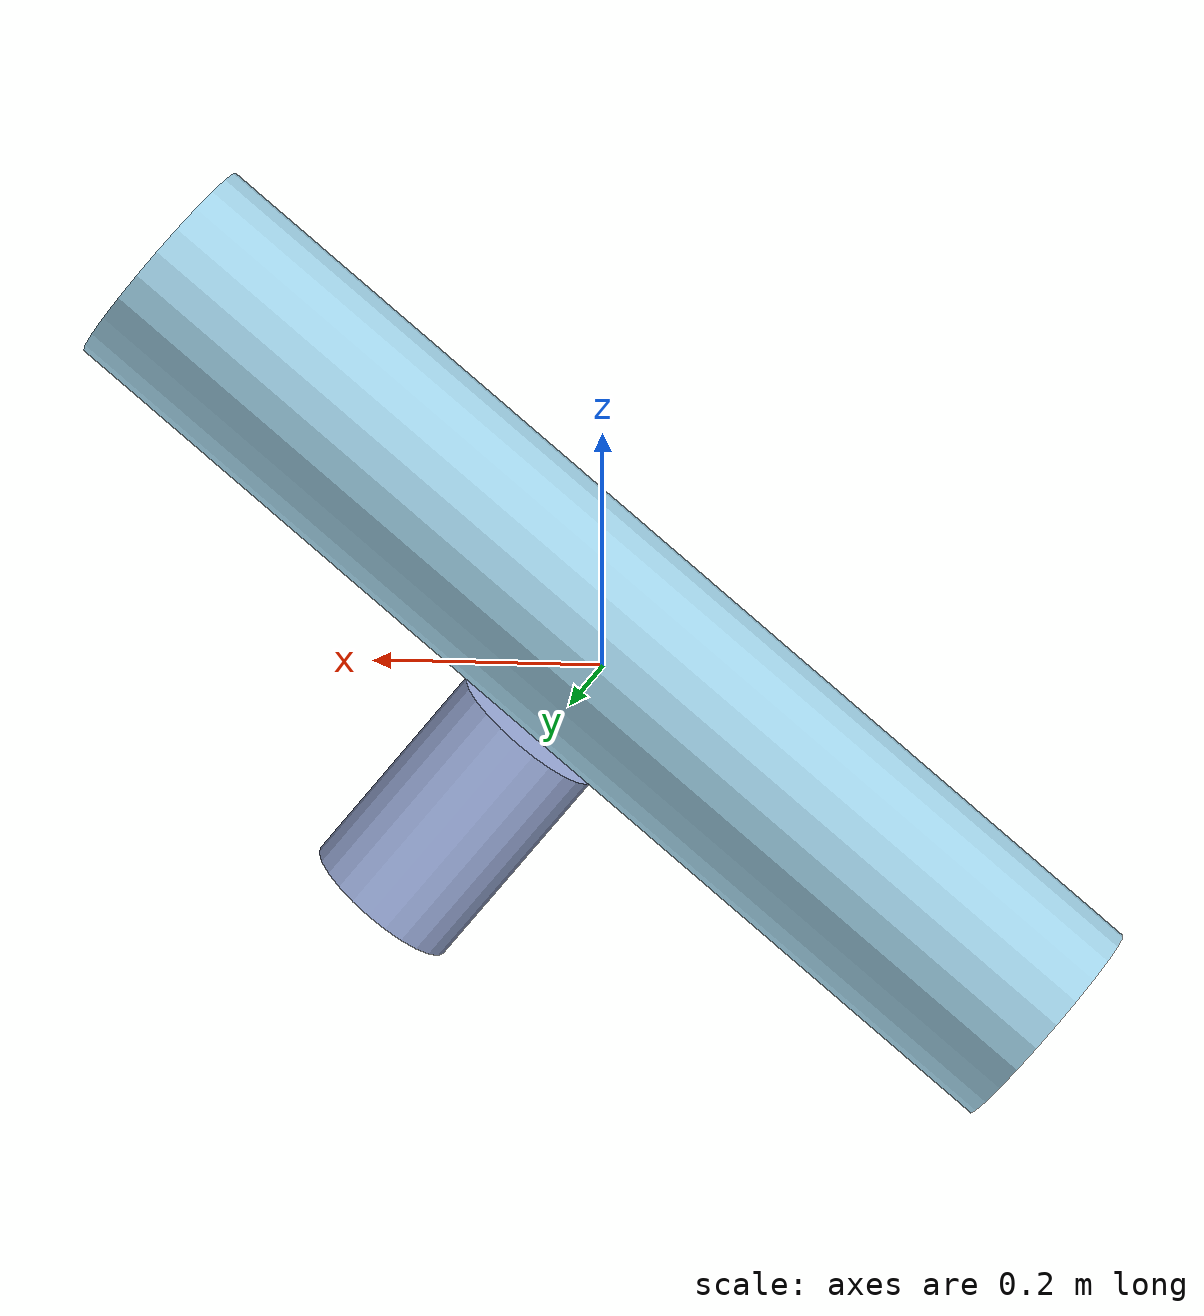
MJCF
<mujoco>
    <include file="./common/materials.xml"/>
    <option  gravity="0 0 0"/>
    <compiler autolimits="true"/>
    <statistic center="0 0 0" extent="0.8"/>

    <asset>
      <texture type="skybox" builtin="gradient" rgb1="0.003 0.207 0.298" rgb2="0.027 0.023 0.149"
        width="100" height="100"/>
    </asset>

    <worldbody>
        <light name="light" pos="0 0 3" directional = "true"/>
        <!-- ground plane -->
        <geom type="plane" size="10 10 0.01" friction="2" pos="0 0 -2" material="motphys-ground"/>

        <!-- gyroscopic -->
        <body name = "base" pos="0 0 0.02" euler="0 50 0">
            <freejoint  name="ball_1"/>
            <geom type="cylinder" size="0.1 0.5" friction="2" rgba = "0.623 0.815 0.898 1"/>
            <body pos="0.2 0 0" euler="0 90 0">
                <geom type="cylinder" size="0.07 0.1" friction="2" rgba = "0.650 0.721 0.913 1"/>
            </body>
        </body>
    </worldbody>
    <actuator>
      <motor name = "ctrl_0" joint="ball_1" gear="0 0 0 10 0 0" ctrllimited="false" forcelimited="false" forcerange="-100 100" ctrlrange="-1 1"/>
      <motor name = "ctrl_1" joint="ball_1" gear="0 0 0 0 0 1" ctrllimited="false" forcelimited="false" forcerange="-100 100" ctrlrange="-0.1 0.1"/>
    </actuator>
  </mujoco>

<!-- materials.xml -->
<!--
Common textures, colors and materials to be used throughout this suite. Some
materials such as xxx_highlight are activated on occurence of certain events,
for example receiving a positive reward.
-->
<mujoco>
  <asset>
    <texture name="motphys-ground" type="2d" file="motphys-ground.png" />
    <material name="motphys-ground" texture="motphys-ground" texuniform="true"
      texrepeat="0.4 0.4" />
  </asset>
</mujoco>
